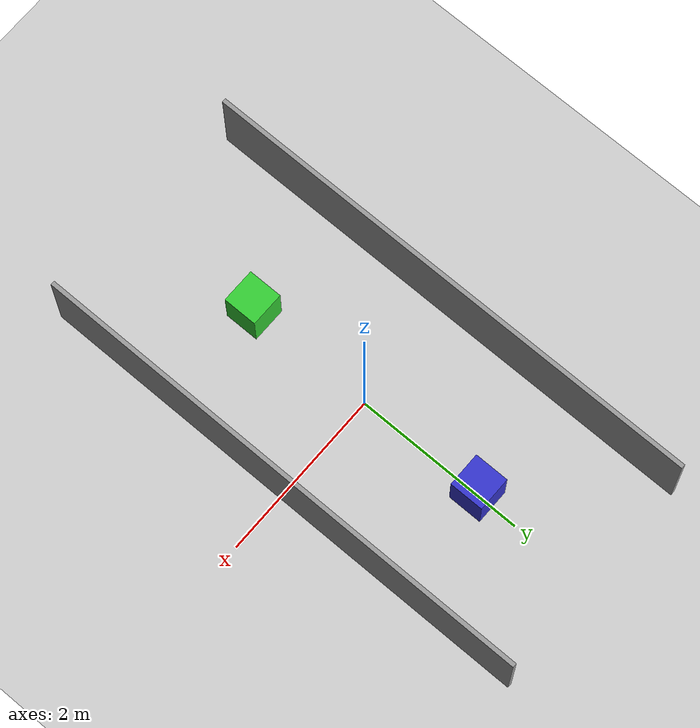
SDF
<?xml version="1.0"?>
<sdf version="1.6">
  <world name="narrow_passages">
    <include>
      <uri>model://ground_plane</uri>
    </include>
    <include>
      <uri>model://sun</uri>
    </include>

    <!-- Two long walls with a narrow gap between them -->
    <model name="wall_left">
      <static>true</static>
      <pose>-1.3 0 0.5 0 0 0</pose>
      <link name="link">
        <collision name="collision">
          <geometry><box><size>0.05 6.0 1.0</size></box></geometry>
        </collision>
        <visual name="visual">
          <geometry><box><size>0.05 6.0 1.0</size></box></geometry>
          <material><ambient>0.6 0.6 0.6 1</ambient></material>
        </visual>
      </link>
    </model>

    <model name="wall_right">
      <static>true</static>
      <pose>1.3 0 0.5 0 0 0</pose>
      <link name="link">
        <collision name="collision">
          <geometry><box><size>0.05 6.0 1.0</size></box></geometry>
        </collision>
        <visual name="visual">
          <geometry><box><size>0.05 6.0 1.0</size></box></geometry>
          <material><ambient>0.6 0.6 0.6 1</ambient></material>
        </visual>
      </link>
    </model>

    <!-- Obstacles to force detours -->
    <model name="block_A">
      <static>true</static>
      <pose>0.0 -1.5 0.25 0 0 0</pose>
      <link name="link">
        <collision name="collision">
          <geometry><box><size>0.4 0.4 0.5</size></box></geometry>
        </collision>
        <visual name="visual">
          <geometry><box><size>0.4 0.4 0.5</size></box></geometry>
          <material><ambient>0.2 0.8 0.2 1</ambient></material>
        </visual>
      </link>
    </model>

    <model name="block_B">
      <static>true</static>
      <pose>0.0 1.5 0.25 0 0 0</pose>
      <link name="link">
        <collision name="collision">
          <geometry><box><size>0.4 0.4 0.5</size></box></geometry>
        </collision>
        <visual name="visual">
          <geometry><box><size>0.4 0.4 0.5</size></box></geometry>
          <material><ambient>0.2 0.2 0.8 1</ambient></material>
        </visual>
      </link>
    </model>
  </world>
</sdf>
